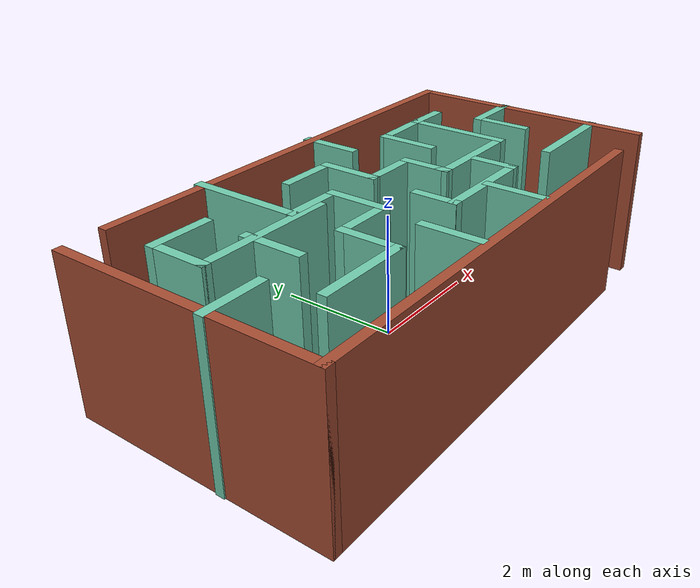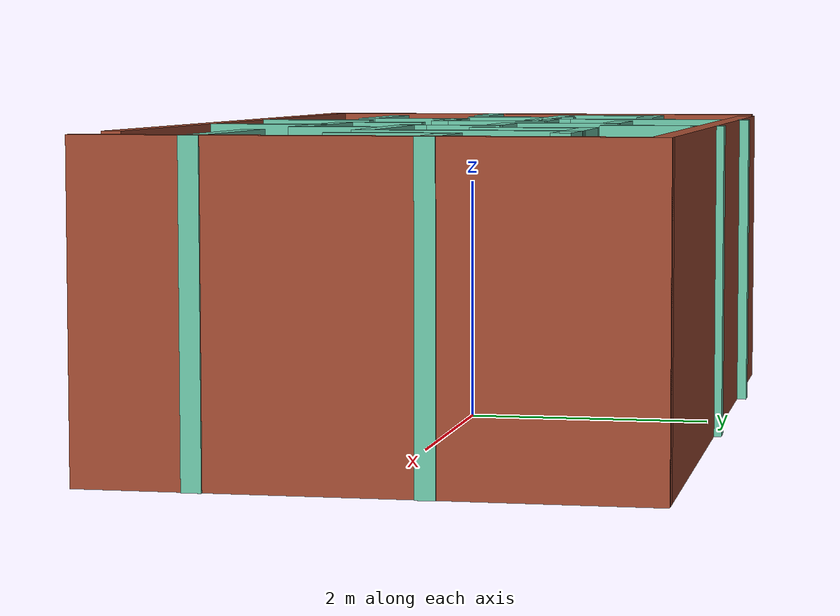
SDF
<?xml version='1.0'?>
<sdf version='1.7'>
  <model name='rom_maze_3.world'>
    <pose>0.085 0.015 0 0 -0 0</pose>
    <link name='Wall_0'>
      <collision name='Wall_0_Collision'>
        <geometry>
          <box>
            <size>4.25 0.15 2.5</size>
          </box>
        </geometry>
        <pose>0 0 1.25 0 -0 0</pose>
      </collision>
      <visual name='Wall_0_Visual'>
        <pose>0 0 1.25 0 -0 0</pose>
        <geometry>
          <box>
            <size>4.25 0.15 2.5</size>
          </box>
        </geometry>
        <material>
          <script>
            <uri>file://media/materials/scripts/gazebo.material</uri>
            <name>Gazebo/Bricks</name>
          </script>
          <ambient>1 1 1 1</ambient>
        </material>
        <meta>
          <layer>0</layer>
        </meta>
      </visual>
      <pose>-4.035 -0.075 0 0 -0 -1.5708</pose>
    </link>
    <link name='Wall_1'>
      <collision name='Wall_1_Collision'>
        <geometry>
          <box>
            <size>7.25 0.15 2.5</size>
          </box>
        </geometry>
        <pose>0 0 1.25 0 -0 0</pose>
      </collision>
      <visual name='Wall_1_Visual'>
        <pose>0 0 1.25 0 -0 0</pose>
        <geometry>
          <box>
            <size>7.25 0.15 2.5</size>
          </box>
        </geometry>
        <material>
          <script>
            <uri>file://media/materials/scripts/gazebo.material</uri>
            <name>Gazebo/Bricks</name>
          </script>
          <ambient>1 1 1 1</ambient>
        </material>
        <meta>
          <layer>0</layer>
        </meta>
      </visual>
      <pose>-0.485 -2.125 0 0 -0 0</pose>
    </link>
    <link name='Wall_10'>
      <collision name='Wall_10_Collision'>
        <geometry>
          <box>
            <size>1.75 0.15 2.5</size>
          </box>
        </geometry>
        <pose>0 0 1.25 0 -0 0</pose>
      </collision>
      <visual name='Wall_10_Visual'>
        <pose>0 0 1.25 0 -0 0</pose>
        <geometry>
          <box>
            <size>1.75 0.15 2.5</size>
          </box>
        </geometry>
        <material>
          <script>
            <uri>file://media/materials/scripts/gazebo.material</uri>
            <name>Gazebo/Grey</name>
          </script>
          <ambient>0.435294 0.796078 0.67451 1</ambient>
        </material>
        <meta>
          <layer>0</layer>
        </meta>
      </visual>
      <pose>3.255 -1.235 0 0 -0 3.14159</pose>
    </link>
    <link name='Wall_12'>
      <collision name='Wall_12_Collision'>
        <geometry>
          <box>
            <size>1 0.15 2.5</size>
          </box>
        </geometry>
        <pose>0 0 1.25 0 -0 0</pose>
      </collision>
      <visual name='Wall_12_Visual'>
        <pose>0 0 1.25 0 -0 0</pose>
        <geometry>
          <box>
            <size>1 0.15 2.5</size>
          </box>
        </geometry>
        <material>
          <script>
            <uri>file://media/materials/scripts/gazebo.material</uri>
            <name>Gazebo/Grey</name>
          </script>
          <ambient>0.435294 0.796078 0.67451 1</ambient>
        </material>
        <meta>
          <layer>0</layer>
        </meta>
      </visual>
      <pose>3.63 0.435 0 0 -0 3.14159</pose>
    </link>
    <link name='Wall_13'>
      <collision name='Wall_13_Collision'>
        <geometry>
          <box>
            <size>1 0.15 2.5</size>
          </box>
        </geometry>
        <pose>0 0 1.25 0 -0 0</pose>
      </collision>
      <visual name='Wall_13_Visual'>
        <pose>0 0 1.25 0 -0 0</pose>
        <geometry>
          <box>
            <size>1 0.15 2.5</size>
          </box>
        </geometry>
        <material>
          <script>
            <uri>file://media/materials/scripts/gazebo.material</uri>
            <name>Gazebo/Grey</name>
          </script>
          <ambient>0.435294 0.796078 0.67451 1</ambient>
        </material>
        <meta>
          <layer>0</layer>
        </meta>
      </visual>
      <pose>3.205 0.01 0 0 -0 -1.5708</pose>
    </link>
    <link name='Wall_15'>
      <collision name='Wall_15_Collision'>
        <geometry>
          <box>
            <size>1 0.15 2.5</size>
          </box>
        </geometry>
        <pose>0 0 1.25 0 -0 0</pose>
      </collision>
      <visual name='Wall_15_Visual'>
        <pose>0 0 1.25 0 -0 0</pose>
        <geometry>
          <box>
            <size>1 0.15 2.5</size>
          </box>
        </geometry>
        <material>
          <script>
            <uri>file://media/materials/scripts/gazebo.material</uri>
            <name>Gazebo/Grey</name>
          </script>
          <ambient>0.435294 0.796078 0.67451 1</ambient>
        </material>
        <meta>
          <layer>0</layer>
        </meta>
      </visual>
      <pose>0.695 1.68 0 0 -0 -1.5708</pose>
    </link>
    <link name='Wall_17'>
      <collision name='Wall_17_Collision'>
        <geometry>
          <box>
            <size>1.75 0.15 2.5</size>
          </box>
        </geometry>
        <pose>0 0 1.25 0 -0 0</pose>
      </collision>
      <visual name='Wall_17_Visual'>
        <pose>0 0 1.25 0 -0 0</pose>
        <geometry>
          <box>
            <size>1.75 0.15 2.5</size>
          </box>
        </geometry>
        <material>
          <script>
            <uri>file://media/materials/scripts/gazebo.material</uri>
            <name>Gazebo/Grey</name>
          </script>
          <ambient>0.435294 0.796078 0.67451 1</ambient>
        </material>
        <meta>
          <layer>0</layer>
        </meta>
      </visual>
      <pose>-1.635 1.325 0 0 -0 -1.5708</pose>
    </link>
    <link name='Wall_18'>
      <collision name='Wall_18_Collision'>
        <geometry>
          <box>
            <size>0.25 0.15 2.5</size>
          </box>
        </geometry>
        <pose>0 0 1.25 0 -0 0</pose>
      </collision>
      <visual name='Wall_18_Visual'>
        <pose>0 0 1.25 0 -0 0</pose>
        <geometry>
          <box>
            <size>0.25 0.15 2.5</size>
          </box>
        </geometry>
        <material>
          <script>
            <uri>file://media/materials/scripts/gazebo.material</uri>
            <name>Gazebo/Grey</name>
          </script>
          <ambient>0.435294 0.796078 0.67451 1</ambient>
        </material>
        <meta>
          <layer>0</layer>
        </meta>
      </visual>
      <pose>-1.635 0.475 0 0 -0 -1.5708</pose>
    </link>
    <link name='Wall_19'>
      <collision name='Wall_19_Collision'>
        <geometry>
          <box>
            <size>1 0.15 2.5</size>
          </box>
        </geometry>
        <pose>0 0 1.25 0 -0 0</pose>
      </collision>
      <visual name='Wall_19_Visual'>
        <pose>0 0 1.25 0 -0 0</pose>
        <geometry>
          <box>
            <size>1 0.15 2.5</size>
          </box>
        </geometry>
        <material>
          <script>
            <uri>file://media/materials/scripts/gazebo.material</uri>
            <name>Gazebo/Grey</name>
          </script>
          <ambient>0.435294 0.796078 0.67451 1</ambient>
        </material>
        <meta>
          <layer>0</layer>
        </meta>
      </visual>
      <pose>-1.21 0.425 0 0 -0 0</pose>
    </link>
    <link name='Wall_20'>
      <collision name='Wall_20_Collision'>
        <geometry>
          <box>
            <size>1 0.15 2.5</size>
          </box>
        </geometry>
        <pose>0 0 1.25 0 -0 0</pose>
      </collision>
      <visual name='Wall_20_Visual'>
        <pose>0 0 1.25 0 -0 0</pose>
        <geometry>
          <box>
            <size>1 0.15 2.5</size>
          </box>
        </geometry>
        <material>
          <script>
            <uri>file://media/materials/scripts/gazebo.material</uri>
            <name>Gazebo/Grey</name>
          </script>
          <ambient>0.435294 0.796078 0.67451 1</ambient>
        </material>
        <meta>
          <layer>0</layer>
        </meta>
      </visual>
      <pose>-0.785 0 0 0 -0 -1.5708</pose>
    </link>
    <link name='Wall_21'>
      <collision name='Wall_21_Collision'>
        <geometry>
          <box>
            <size>1 0.15 2.5</size>
          </box>
        </geometry>
        <pose>0 0 1.25 0 -0 0</pose>
      </collision>
      <visual name='Wall_21_Visual'>
        <pose>0 0 1.25 0 -0 0</pose>
        <geometry>
          <box>
            <size>1 0.15 2.5</size>
          </box>
        </geometry>
        <material>
          <script>
            <uri>file://media/materials/scripts/gazebo.material</uri>
            <name>Gazebo/Grey</name>
          </script>
          <ambient>0.435294 0.796078 0.67451 1</ambient>
        </material>
        <meta>
          <layer>0</layer>
        </meta>
      </visual>
      <pose>-1.21 -0.425 0 0 -0 3.14159</pose>
    </link>
    <link name='Wall_22'>
      <collision name='Wall_22_Collision'>
        <geometry>
          <box>
            <size>1 0.15 2.5</size>
          </box>
        </geometry>
        <pose>0 0 1.25 0 -0 0</pose>
      </collision>
      <visual name='Wall_22_Visual'>
        <pose>0 0 1.25 0 -0 0</pose>
        <geometry>
          <box>
            <size>1 0.15 2.5</size>
          </box>
        </geometry>
        <material>
          <script>
            <uri>file://media/materials/scripts/gazebo.material</uri>
            <name>Gazebo/Grey</name>
          </script>
          <ambient>0.435294 0.796078 0.67451 1</ambient>
        </material>
        <meta>
          <layer>0</layer>
        </meta>
      </visual>
      <pose>-1.635 -0.85 0 0 -0 -1.5708</pose>
    </link>
    <link name='Wall_23'>
      <collision name='Wall_23_Collision'>
        <geometry>
          <box>
            <size>1.5 0.15 2.5</size>
          </box>
        </geometry>
        <pose>0 0 1.25 0 -0 0</pose>
      </collision>
      <visual name='Wall_23_Visual'>
        <pose>0 0 1.25 0 -0 0</pose>
        <geometry>
          <box>
            <size>1.5 0.15 2.5</size>
          </box>
        </geometry>
        <material>
          <script>
            <uri>file://media/materials/scripts/gazebo.material</uri>
            <name>Gazebo/Grey</name>
          </script>
          <ambient>0.435294 0.796078 0.67451 1</ambient>
        </material>
        <meta>
          <layer>0</layer>
        </meta>
      </visual>
      <pose>-2.31 -1.275 0 0 -0 3.14159</pose>
    </link>
    <link name='Wall_25'>
      <collision name='Wall_25_Collision'>
        <geometry>
          <box>
            <size>1 0.15 2.5</size>
          </box>
        </geometry>
        <pose>0 0 1.25 0 -0 0</pose>
      </collision>
      <visual name='Wall_25_Visual'>
        <pose>0 0 1.25 0 -0 0</pose>
        <geometry>
          <box>
            <size>1 0.15 2.5</size>
          </box>
        </geometry>
        <material>
          <script>
            <uri>file://media/materials/scripts/gazebo.material</uri>
            <name>Gazebo/Grey</name>
          </script>
          <ambient>0.435294 0.796078 0.67451 1</ambient>
        </material>
        <meta>
          <layer>0</layer>
        </meta>
      </visual>
      <pose>-2.88 1.175 0 0 -0 3.14159</pose>
    </link>
    <link name='Wall_26'>
      <collision name='Wall_26_Collision'>
        <geometry>
          <box>
            <size>1 0.15 2.5</size>
          </box>
        </geometry>
        <pose>0 0 1.25 0 -0 0</pose>
      </collision>
      <visual name='Wall_26_Visual'>
        <pose>0 0 1.25 0 -0 0</pose>
        <geometry>
          <box>
            <size>1 0.15 2.5</size>
          </box>
        </geometry>
        <material>
          <script>
            <uri>file://media/materials/scripts/gazebo.material</uri>
            <name>Gazebo/Grey</name>
          </script>
          <ambient>0.435294 0.796078 0.67451 1</ambient>
        </material>
        <meta>
          <layer>0</layer>
        </meta>
      </visual>
      <pose>-3.305 0.75 0 0 -0 -1.5708</pose>
    </link>
    <link name='Wall_27'>
      <collision name='Wall_27_Collision'>
        <geometry>
          <box>
            <size>2.25 0.15 2.5</size>
          </box>
        </geometry>
        <pose>0 0 1.25 0 -0 0</pose>
      </collision>
      <visual name='Wall_27_Visual'>
        <pose>0 0 1.25 0 -0 0</pose>
        <geometry>
          <box>
            <size>2.25 0.15 2.5</size>
          </box>
        </geometry>
        <material>
          <script>
            <uri>file://media/materials/scripts/gazebo.material</uri>
            <name>Gazebo/Grey</name>
          </script>
          <ambient>0.435294 0.796078 0.67451 1</ambient>
        </material>
        <meta>
          <layer>0</layer>
        </meta>
      </visual>
      <pose>-2.255 0.325 0 0 -0 0</pose>
    </link>
    <link name='Wall_29'>
      <collision name='Wall_29_Collision'>
        <geometry>
          <box>
            <size>1 0.15 2.5</size>
          </box>
        </geometry>
        <pose>0 0 1.25 0 -0 0</pose>
      </collision>
      <visual name='Wall_29_Visual'>
        <pose>0 0 1.25 0 -0 0</pose>
        <geometry>
          <box>
            <size>1 0.15 2.5</size>
          </box>
        </geometry>
        <material>
          <script>
            <uri>file://media/materials/scripts/gazebo.material</uri>
            <name>Gazebo/Grey</name>
          </script>
          <ambient>0.435294 0.796078 0.67451 1</ambient>
        </material>
        <meta>
          <layer>0</layer>
        </meta>
      </visual>
      <pose>-2.455 0.01 0 0 -0 1.5708</pose>
    </link>
    <link name='Wall_3'>
      <collision name='Wall_3_Collision'>
        <geometry>
          <box>
            <size>7.5 0.15 2.5</size>
          </box>
        </geometry>
        <pose>0 0 1.25 0 -0 0</pose>
      </collision>
      <visual name='Wall_3_Visual'>
        <pose>0 0 1.25 0 -0 0</pose>
        <geometry>
          <box>
            <size>7.5 0.15 2.5</size>
          </box>
        </geometry>
        <material>
          <script>
            <uri>file://media/materials/scripts/gazebo.material</uri>
            <name>Gazebo/Bricks</name>
          </script>
          <ambient>1 1 1 1</ambient>
        </material>
        <meta>
          <layer>0</layer>
        </meta>
      </visual>
      <pose>0.36 2.045 0 0 -0 0</pose>
    </link>
    <link name='Wall_31'>
      <collision name='Wall_31_Collision'>
        <geometry>
          <box>
            <size>1 0.15 2.5</size>
          </box>
        </geometry>
        <pose>0 0 1.25 0 -0 0</pose>
      </collision>
      <visual name='Wall_31_Visual'>
        <pose>0 0 1.25 0 -0 0</pose>
        <geometry>
          <box>
            <size>1 0.15 2.5</size>
          </box>
        </geometry>
        <material>
          <script>
            <uri>file://media/materials/scripts/gazebo.material</uri>
            <name>Gazebo/Grey</name>
          </script>
          <ambient>0.435294 0.796078 0.67451 1</ambient>
        </material>
        <meta>
          <layer>0</layer>
        </meta>
      </visual>
      <pose>-0.44 1.165 0 0 -0 0</pose>
    </link>
    <link name='Wall_32'>
      <collision name='Wall_32_Collision'>
        <geometry>
          <box>
            <size>1 0.15 2.5</size>
          </box>
        </geometry>
        <pose>0 0 1.25 0 -0 0</pose>
      </collision>
      <visual name='Wall_32_Visual'>
        <pose>0 0 1.25 0 -0 0</pose>
        <geometry>
          <box>
            <size>1 0.15 2.5</size>
          </box>
        </geometry>
        <material>
          <script>
            <uri>file://media/materials/scripts/gazebo.material</uri>
            <name>Gazebo/Grey</name>
          </script>
          <ambient>0.435294 0.796078 0.67451 1</ambient>
        </material>
        <meta>
          <layer>0</layer>
        </meta>
      </visual>
      <pose>-0.015 0.74 0 0 -0 -1.5708</pose>
    </link>
    <link name='Wall_33'>
      <collision name='Wall_33_Collision'>
        <geometry>
          <box>
            <size>1 0.15 2.5</size>
          </box>
        </geometry>
        <pose>0 0 1.25 0 -0 0</pose>
      </collision>
      <visual name='Wall_33_Visual'>
        <pose>0 0 1.25 0 -0 0</pose>
        <geometry>
          <box>
            <size>1 0.15 2.5</size>
          </box>
        </geometry>
        <material>
          <script>
            <uri>file://media/materials/scripts/gazebo.material</uri>
            <name>Gazebo/Grey</name>
          </script>
          <ambient>0.435294 0.796078 0.67451 1</ambient>
        </material>
        <meta>
          <layer>0</layer>
        </meta>
      </visual>
      <pose>0.41 0.315 0 0 -0 0</pose>
    </link>
    <link name='Wall_34'>
      <collision name='Wall_34_Collision'>
        <geometry>
          <box>
            <size>0.75 0.15 2.5</size>
          </box>
        </geometry>
        <pose>0 0 1.25 0 -0 0</pose>
      </collision>
      <visual name='Wall_34_Visual'>
        <pose>0 0 1.25 0 -0 0</pose>
        <geometry>
          <box>
            <size>0.75 0.15 2.5</size>
          </box>
        </geometry>
        <material>
          <script>
            <uri>file://media/materials/scripts/gazebo.material</uri>
            <name>Gazebo/Grey</name>
          </script>
          <ambient>0.435294 0.796078 0.67451 1</ambient>
        </material>
        <meta>
          <layer>0</layer>
        </meta>
      </visual>
      <pose>0.835 0.015 0 0 -0 -1.5708</pose>
    </link>
    <link name='Wall_35'>
      <collision name='Wall_35_Collision'>
        <geometry>
          <box>
            <size>0.25 0.15 2.5</size>
          </box>
        </geometry>
        <pose>0 0 1.25 0 -0 0</pose>
      </collision>
      <visual name='Wall_35_Visual'>
        <pose>0 0 1.25 0 -0 0</pose>
        <geometry>
          <box>
            <size>0.25 0.15 2.5</size>
          </box>
        </geometry>
        <material>
          <script>
            <uri>file://media/materials/scripts/gazebo.material</uri>
            <name>Gazebo/Grey</name>
          </script>
          <ambient>0.435294 0.796078 0.67451 1</ambient>
        </material>
        <meta>
          <layer>0</layer>
        </meta>
      </visual>
      <pose>0.835 -0.335 0 0 -0 -1.5708</pose>
    </link>
    <link name='Wall_36'>
      <collision name='Wall_36_Collision'>
        <geometry>
          <box>
            <size>1.75 0.15 2.5</size>
          </box>
        </geometry>
        <pose>0 0 1.25 0 -0 0</pose>
      </collision>
      <visual name='Wall_36_Visual'>
        <pose>0 0 1.25 0 -0 0</pose>
        <geometry>
          <box>
            <size>1.75 0.15 2.5</size>
          </box>
        </geometry>
        <material>
          <script>
            <uri>file://media/materials/scripts/gazebo.material</uri>
            <name>Gazebo/Grey</name>
          </script>
          <ambient>0.435294 0.796078 0.67451 1</ambient>
        </material>
        <meta>
          <layer>0</layer>
        </meta>
      </visual>
      <pose>1.635 -0.385 0 0 -0 0</pose>
    </link>
    <link name='Wall_37'>
      <collision name='Wall_37_Collision'>
        <geometry>
          <box>
            <size>1.75 0.15 2.5</size>
          </box>
        </geometry>
        <pose>0 0 1.25 0 -0 0</pose>
      </collision>
      <visual name='Wall_37_Visual'>
        <pose>0 0 1.25 0 -0 0</pose>
        <geometry>
          <box>
            <size>1.75 0.15 2.5</size>
          </box>
        </geometry>
        <material>
          <script>
            <uri>file://media/materials/scripts/gazebo.material</uri>
            <name>Gazebo/Grey</name>
          </script>
          <ambient>0.435294 0.796078 0.67451 1</ambient>
        </material>
        <meta>
          <layer>0</layer>
        </meta>
      </visual>
      <pose>2.435 0.415 0 0 -0 1.5708</pose>
    </link>
    <link name='Wall_38'>
      <collision name='Wall_38_Collision'>
        <geometry>
          <box>
            <size>0.75 0.15 2.5</size>
          </box>
        </geometry>
        <pose>0 0 1.25 0 -0 0</pose>
      </collision>
      <visual name='Wall_38_Visual'>
        <pose>0 0 1.25 0 -0 0</pose>
        <geometry>
          <box>
            <size>0.75 0.15 2.5</size>
          </box>
        </geometry>
        <material>
          <script>
            <uri>file://media/materials/scripts/gazebo.material</uri>
            <name>Gazebo/Grey</name>
          </script>
          <ambient>0.435294 0.796078 0.67451 1</ambient>
        </material>
        <meta>
          <layer>0</layer>
        </meta>
      </visual>
      <pose>2.735 1.215 0 0 -0 0</pose>
    </link>
    <link name='Wall_4'>
      <collision name='Wall_4_Collision'>
        <geometry>
          <box>
            <size>4.25 0.15 2.5</size>
          </box>
        </geometry>
        <pose>0 0 1.25 0 -0 0</pose>
      </collision>
      <visual name='Wall_4_Visual'>
        <pose>0 0 1.25 0 -0 0</pose>
        <geometry>
          <box>
            <size>4.25 0.15 2.5</size>
          </box>
        </geometry>
        <material>
          <script>
            <uri>file://media/materials/scripts/gazebo.material</uri>
            <name>Gazebo/Bricks</name>
          </script>
          <ambient>1 1 1 1</ambient>
        </material>
        <meta>
          <layer>0</layer>
        </meta>
      </visual>
      <pose>4.035 -0.005 0 0 -0 -1.5708</pose>
    </link>
    <link name='Wall_40'>
      <collision name='Wall_40_Collision'>
        <geometry>
          <box>
            <size>1 0.15 2.5</size>
          </box>
        </geometry>
        <pose>0 0 1.25 0 -0 0</pose>
      </collision>
      <visual name='Wall_40_Visual'>
        <pose>0 0 1.25 0 -0 0</pose>
        <geometry>
          <box>
            <size>1 0.15 2.5</size>
          </box>
        </geometry>
        <material>
          <script>
            <uri>file://media/materials/scripts/gazebo.material</uri>
            <name>Gazebo/Grey</name>
          </script>
          <ambient>0.435294 0.796078 0.67451 1</ambient>
        </material>
        <meta>
          <layer>0</layer>
        </meta>
      </visual>
      <pose>1.525 0.77 0 0 -0 1.5708</pose>
    </link>
    <link name='Wall_41'>
      <collision name='Wall_41_Collision'>
        <geometry>
          <box>
            <size>1.06022 0.15 2.5</size>
          </box>
        </geometry>
        <pose>0 0 1.25 0 -0 0</pose>
      </collision>
      <visual name='Wall_41_Visual'>
        <pose>0 0 1.25 0 -0 0</pose>
        <geometry>
          <box>
            <size>1.06022 0.15 2.5</size>
          </box>
        </geometry>
        <material>
          <script>
            <uri>file://media/materials/scripts/gazebo.material</uri>
            <name>Gazebo/Grey</name>
          </script>
          <ambient>0.435294 0.796078 0.67451 1</ambient>
        </material>
        <meta>
          <layer>0</layer>
        </meta>
      </visual>
      <pose>1.98 1.205 0 0 -0 0.021974</pose>
    </link>
    <link name='Wall_43'>
      <collision name='Wall_43_Collision'>
        <geometry>
          <box>
            <size>0.75 0.15 2.5</size>
          </box>
        </geometry>
        <pose>0 0 1.25 0 -0 0</pose>
      </collision>
      <visual name='Wall_43_Visual'>
        <pose>0 0 1.25 0 -0 0</pose>
        <geometry>
          <box>
            <size>0.75 0.15 2.5</size>
          </box>
        </geometry>
        <material>
          <script>
            <uri>file://media/materials/scripts/gazebo.material</uri>
            <name>Gazebo/Grey</name>
          </script>
          <ambient>0.435294 0.796078 0.67451 1</ambient>
        </material>
        <meta>
          <layer>0</layer>
        </meta>
      </visual>
      <pose>-0.085 -0.815 0 0 -0 -1.5708</pose>
    </link>
    <link name='Wall_44'>
      <collision name='Wall_44_Collision'>
        <geometry>
          <box>
            <size>1.75 0.15 2.5</size>
          </box>
        </geometry>
        <pose>0 0 1.25 0 -0 0</pose>
      </collision>
      <visual name='Wall_44_Visual'>
        <pose>0 0 1.25 0 -0 0</pose>
        <geometry>
          <box>
            <size>1.75 0.15 2.5</size>
          </box>
        </geometry>
        <material>
          <script>
            <uri>file://media/materials/scripts/gazebo.material</uri>
            <name>Gazebo/Grey</name>
          </script>
          <ambient>0.435294 0.796078 0.67451 1</ambient>
        </material>
        <meta>
          <layer>0</layer>
        </meta>
      </visual>
      <pose>0.715 -1.115 0 0 -0 0</pose>
    </link>
    <link name='Wall_45'>
      <collision name='Wall_45_Collision'>
        <geometry>
          <box>
            <size>0.75 0.15 2.5</size>
          </box>
        </geometry>
        <pose>0 0 1.25 0 -0 0</pose>
      </collision>
      <visual name='Wall_45_Visual'>
        <pose>0 0 1.25 0 -0 0</pose>
        <geometry>
          <box>
            <size>0.75 0.15 2.5</size>
          </box>
        </geometry>
        <material>
          <script>
            <uri>file://media/materials/scripts/gazebo.material</uri>
            <name>Gazebo/Grey</name>
          </script>
          <ambient>0.435294 0.796078 0.67451 1</ambient>
        </material>
        <meta>
          <layer>0</layer>
        </meta>
      </visual>
      <pose>1.515 -0.815 0 0 -0 1.5708</pose>
    </link>
    <link name='Wall_47'>
      <collision name='Wall_47_Collision'>
        <geometry>
          <box>
            <size>1 0.15 2.5</size>
          </box>
        </geometry>
        <pose>0 0 1.25 0 -0 0</pose>
      </collision>
      <visual name='Wall_47_Visual'>
        <pose>0 0 1.25 0 -0 0</pose>
        <geometry>
          <box>
            <size>1 0.15 2.5</size>
          </box>
        </geometry>
        <material>
          <script>
            <uri>file://media/materials/scripts/gazebo.material</uri>
            <name>Gazebo/Grey</name>
          </script>
          <ambient>0.435294 0.796078 0.67451 1</ambient>
        </material>
        <meta>
          <layer>0</layer>
        </meta>
      </visual>
      <pose>0.745 -1.59 0 0 -0 1.5708</pose>
    </link>
    <link name='Wall_6'>
      <collision name='Wall_6_Collision'>
        <geometry>
          <box>
            <size>1 0.15 2.5</size>
          </box>
        </geometry>
        <pose>0 0 1.25 0 -0 0</pose>
      </collision>
      <visual name='Wall_6_Visual'>
        <pose>0 0 1.25 0 -0 0</pose>
        <geometry>
          <box>
            <size>1 0.15 2.5</size>
          </box>
        </geometry>
        <material>
          <script>
            <uri>file://media/materials/scripts/gazebo.material</uri>
            <name>Gazebo/Grey</name>
          </script>
          <ambient>0.435294 0.796078 0.67451 1</ambient>
        </material>
        <meta>
          <layer>0</layer>
        </meta>
      </visual>
      <pose>-3.63 -0.495 0 0 -0 0</pose>
    </link>
    <link name='Wall_8'>
      <collision name='Wall_8_Collision'>
        <geometry>
          <box>
            <size>1 0.15 2.5</size>
          </box>
        </geometry>
        <pose>0 0 1.25 0 -0 0</pose>
      </collision>
      <visual name='Wall_8_Visual'>
        <pose>0 0 1.25 0 -0 0</pose>
        <geometry>
          <box>
            <size>1 0.15 2.5</size>
          </box>
        </geometry>
        <material>
          <script>
            <uri>file://media/materials/scripts/gazebo.material</uri>
            <name>Gazebo/Grey</name>
          </script>
          <ambient>0.435294 0.796078 0.67451 1</ambient>
        </material>
        <meta>
          <layer>0</layer>
        </meta>
      </visual>
      <pose>-0.895 -1.58 0 0 -0 1.5708</pose>
    </link>
    <static>1</static>
  </model>
</sdf>
